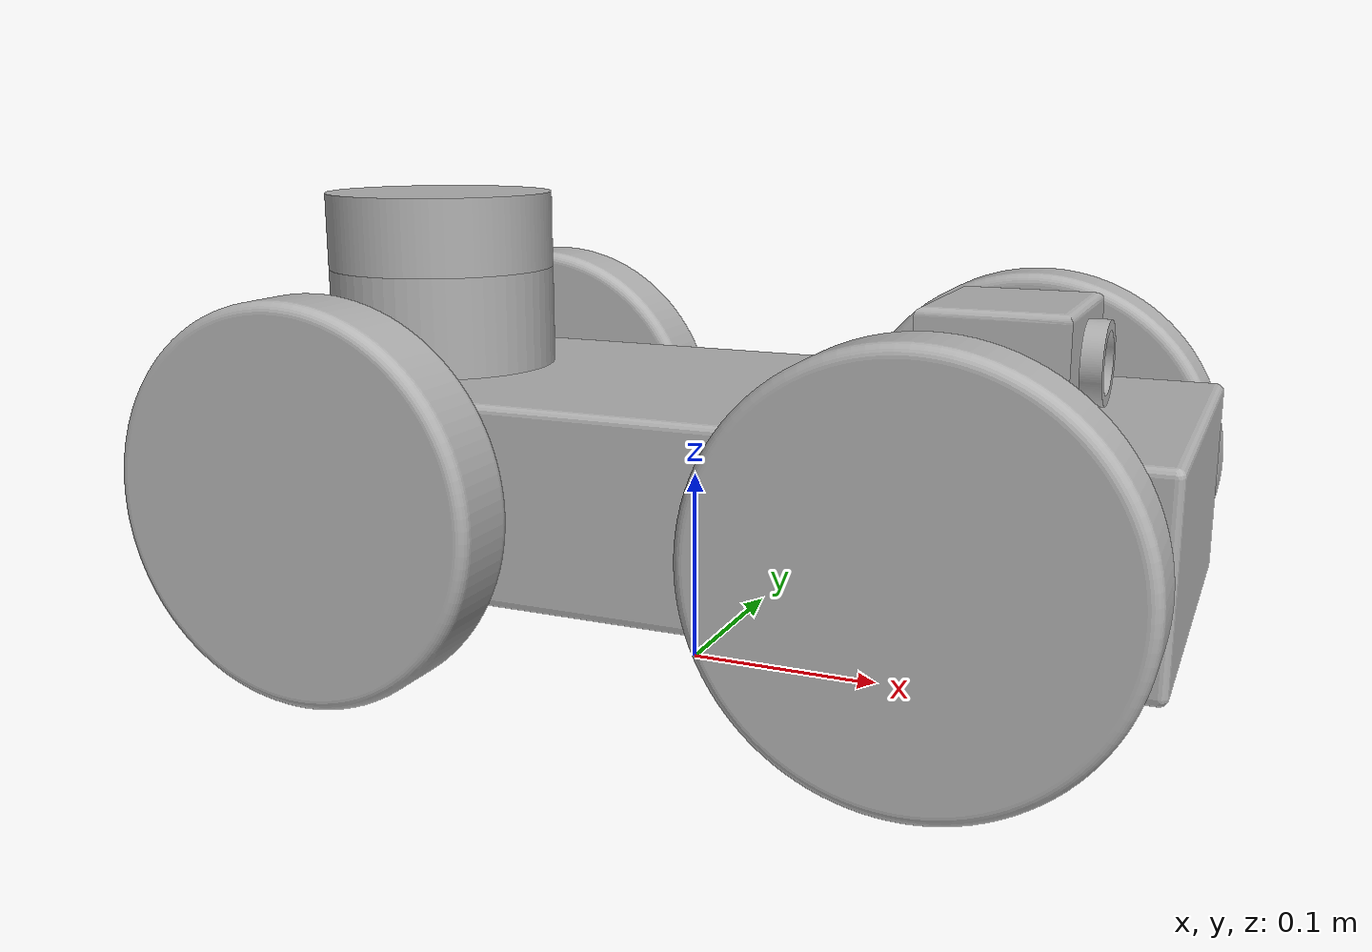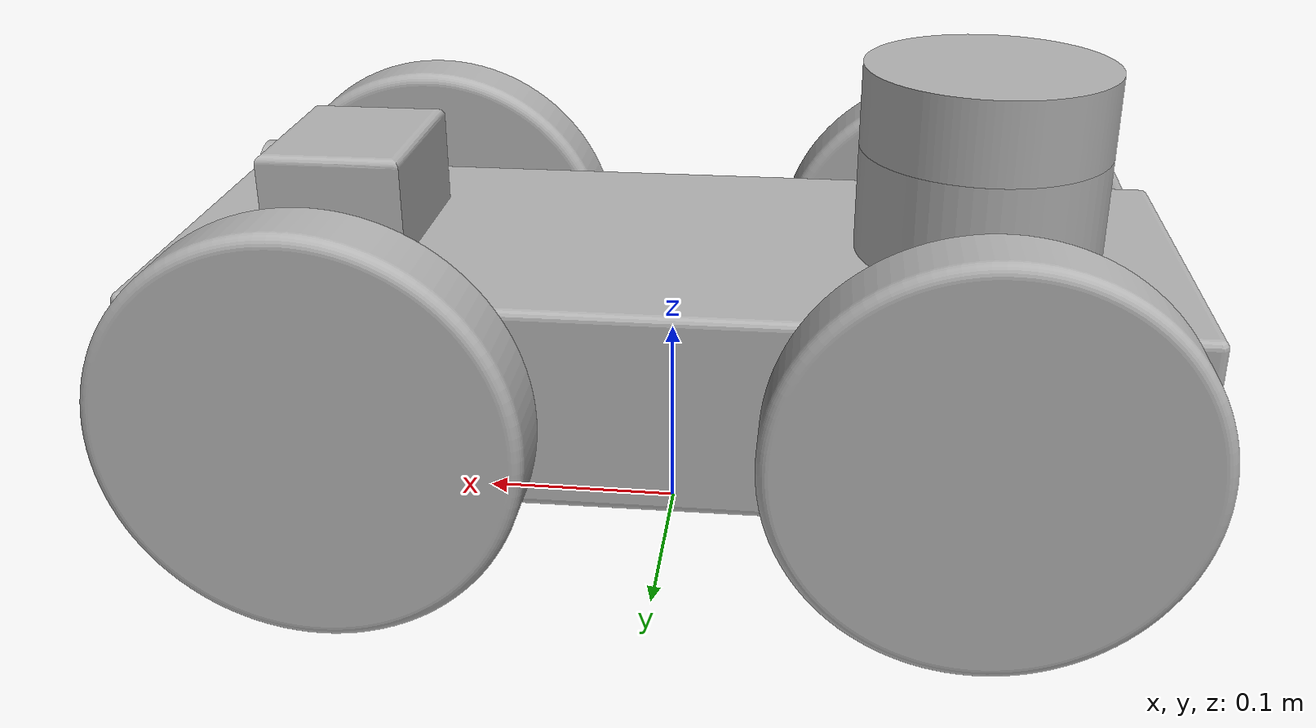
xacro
<?xml version="1.0" ?>
<robot name="pi_robot" xmlns:xacro="http://www.ros.org/wiki/xacro">

<xacro:include filename="$(find pi_robot_description)/urdf/materials.xacro" />
<xacro:include filename="$(find pi_robot_description)/urdf/pi_robot.trans" />
<xacro:include filename="$(find pi_robot_description)/urdf/pi_robot.gazebo" />
<link name="base_link">
  <inertial>
    <origin xyz="-0.003484816038942767 2.669844108166878e-17 0.10625767751059337" rpy="0 0 0"/>
    <mass value="29.432558250427014"/>
    <inertia ixx="0.127783" iyy="0.656623" izz="0.712915" ixy="-0.0" iyz="0.0" ixz="0.0073"/>
  </inertial>
  <visual>
    <origin xyz="0 0 0" rpy="0 0 0"/>
    <geometry>
      <mesh filename="package://pi_robot_description/meshes/base_link.stl" scale="0.001 0.001 0.001"/>
    </geometry>
    <material name="silver"/>
  </visual>
  <collision>
    <origin xyz="0 0 0" rpy="0 0 0"/>
    <geometry>
      <mesh filename="package://pi_robot_description/meshes/base_link.stl" scale="0.001 0.001 0.001"/>
    </geometry>
  </collision>
</link>

<link name="front_left_wheel_1">
  <inertial>
    <origin xyz="2.7755575615628914e-17 0.020000000000000004 0.0" rpy="0 0 0"/>
    <mass value="1.1597646981621281"/>
    <inertia ixx="0.003031" iyy="0.005757" izz="0.003031" ixy="0.0" iyz="0.0" ixz="0.0"/>
  </inertial>
  <visual>
    <origin xyz="-0.15 -0.105 -0.1" rpy="0 0 0"/>
    <geometry>
      <mesh filename="package://pi_robot_description/meshes/front_left_wheel_1.stl" scale="0.001 0.001 0.001"/>
    </geometry>
    <material name="silver"/>
  </visual>
  <collision>
    <origin xyz="-0.15 -0.105 -0.1" rpy="0 0 0"/>
    <geometry>
      <mesh filename="package://pi_robot_description/meshes/front_left_wheel_1.stl" scale="0.001 0.001 0.001"/>
    </geometry>
  </collision>
</link>

<link name="front_right_wheel_1">
  <inertial>
    <origin xyz="0.0 -0.020000000000000004 1.3877787807814457e-17" rpy="0 0 0"/>
    <mass value="1.1597646981621288"/>
    <inertia ixx="0.003031" iyy="0.005757" izz="0.003031" ixy="0.0" iyz="0.0" ixz="0.0"/>
  </inertial>
  <visual>
    <origin xyz="-0.15 0.105 -0.1" rpy="0 0 0"/>
    <geometry>
      <mesh filename="package://pi_robot_description/meshes/front_right_wheel_1.stl" scale="0.001 0.001 0.001"/>
    </geometry>
    <material name="silver"/>
  </visual>
  <collision>
    <origin xyz="-0.15 0.105 -0.1" rpy="0 0 0"/>
    <geometry>
      <mesh filename="package://pi_robot_description/meshes/front_right_wheel_1.stl" scale="0.001 0.001 0.001"/>
    </geometry>
  </collision>
</link>

<link name="rear_left_wheel_1">
  <inertial>
    <origin xyz="2.7755575615628914e-17 0.020000000000000004 1.3877787807814457e-17" rpy="0 0 0"/>
    <mass value="1.1597646981621286"/>
    <inertia ixx="0.003031" iyy="0.005757" izz="0.003031" ixy="0.0" iyz="0.0" ixz="0.0"/>
  </inertial>
  <visual>
    <origin xyz="0.15 -0.105 -0.1" rpy="0 0 0"/>
    <geometry>
      <mesh filename="package://pi_robot_description/meshes/rear_left_wheel_1.stl" scale="0.001 0.001 0.001"/>
    </geometry>
    <material name="silver"/>
  </visual>
  <collision>
    <origin xyz="0.15 -0.105 -0.1" rpy="0 0 0"/>
    <geometry>
      <mesh filename="package://pi_robot_description/meshes/rear_left_wheel_1.stl" scale="0.001 0.001 0.001"/>
    </geometry>
  </collision>
</link>

<link name="rear_right_wheel_1">
  <inertial>
    <origin xyz="2.7755575615628914e-17 -0.020000000000000004 0.0" rpy="0 0 0"/>
    <mass value="1.1597646981621286"/>
    <inertia ixx="0.003031" iyy="0.005757" izz="0.003031" ixy="-0.0" iyz="-0.0" ixz="0.0"/>
  </inertial>
  <visual>
    <origin xyz="0.15 0.105 -0.1" rpy="0 0 0"/>
    <geometry>
      <mesh filename="package://pi_robot_description/meshes/rear_right_wheel_1.stl" scale="0.001 0.001 0.001"/>
    </geometry>
    <material name="silver"/>
  </visual>
  <collision>
    <origin xyz="0.15 0.105 -0.1" rpy="0 0 0"/>
    <geometry>
      <mesh filename="package://pi_robot_description/meshes/rear_right_wheel_1.stl" scale="0.001 0.001 0.001"/>
    </geometry>
  </collision>
</link>

<link name="camera_link_1">
  <inertial>
    <origin xyz="0.0050000000000000044 3.2310396764073848e-18 2.7755575615628914e-17" rpy="0 0 0"/>
    <mass value="0.00783434667988954"/>
    <inertia ixx="2e-06" iyy="1e-06" izz="1e-06" ixy="0.0" iyz="0.0" ixz="0.0"/>
  </inertial>
  <visual>
    <origin xyz="-0.195 -0.0 -0.173" rpy="0 0 0"/>
    <geometry>
      <mesh filename="package://pi_robot_description/meshes/camera_link_1.stl" scale="0.001 0.001 0.001"/>
    </geometry>
    <material name="silver"/>
  </visual>
  <collision>
    <origin xyz="-0.195 -0.0 -0.173" rpy="0 0 0"/>
    <geometry>
      <mesh filename="package://pi_robot_description/meshes/camera_link_1.stl" scale="0.001 0.001 0.001"/>
    </geometry>
  </collision>
</link>

<link name="lidar_1">
  <inertial>
    <origin xyz="-2.7755575615628914e-17 -1.0052123437711855e-17 0.020000000000000018" rpy="0 0 0"/>
    <mass value="3.551256335617902"/>
    <inertia ixx="0.00367" iyy="0.00367" izz="0.006392" ixy="-0.0" iyz="0.0" ixz="-0.0"/>
  </inertial>
  <visual>
    <origin xyz="0.15 -0.0 -0.202" rpy="0 0 0"/>
    <geometry>
      <mesh filename="package://pi_robot_description/meshes/lidar_1.stl" scale="0.001 0.001 0.001"/>
    </geometry>
    <material name="silver"/>
  </visual>
  <collision>
    <origin xyz="0.15 -0.0 -0.202" rpy="0 0 0"/>
    <geometry>
      <mesh filename="package://pi_robot_description/meshes/lidar_1.stl" scale="0.001 0.001 0.001"/>
    </geometry>
  </collision>
</link>

<joint name="Revolute 5" type="continuous">
  <origin xyz="0.15 0.105 0.1" rpy="0 0 0"/>
  <parent link="base_link"/>
  <child link="front_left_wheel_1"/>
  <axis xyz="0.0 1.0 0.0"/>
</joint>

<joint name="Revolute 6" type="continuous">
  <origin xyz="0.15 -0.105 0.1" rpy="0 0 0"/>
  <parent link="base_link"/>
  <child link="front_right_wheel_1"/>
  <axis xyz="0.0 1.0 0.0"/>
</joint>

<joint name="Revolute 7" type="continuous">
  <origin xyz="-0.15 0.105 0.1" rpy="0 0 0"/>
  <parent link="base_link"/>
  <child link="rear_left_wheel_1"/>
  <axis xyz="0.0 1.0 0.0"/>
</joint>

<joint name="Revolute 8" type="continuous">
  <origin xyz="-0.15 -0.105 0.1" rpy="0 0 0"/>
  <parent link="base_link"/>
  <child link="rear_right_wheel_1"/>
  <axis xyz="0.0 1.0 0.0"/>
</joint>

<joint name="Rigid 9" type="fixed">
  <origin xyz="0.195 0.0 0.173" rpy="0 0 0"/>
  <parent link="base_link"/>
  <child link="camera_link_1"/>
</joint>

<joint name="Rigid 10" type="fixed">
  <origin xyz="-0.15 0.0 0.202" rpy="0 0 0"/>
  <parent link="base_link"/>
  <child link="lidar_1"/>
</joint>

</robot>

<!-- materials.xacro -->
<robot name="pi_robot" xmlns:xacro="http://www.ros.org/wiki/xacro" >

<material name="silver">
  <color rgba="0.700 0.700 0.700 1.000"/>
</material>

</robot>

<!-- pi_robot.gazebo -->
<robot name="pi_robot" xmlns:xacro="http://www.ros.org/wiki/xacro" >

<xacro:property name="body_color" value="Gazebo/Silver" />

<gazebo>
  <plugin name="control" filename="libgazebo_ros_control.so"/>
</gazebo>
<gazebo reference="base_link">
  <material>${body_color}</material>
  <mu1>0.1</mu1>
  <mu2>0.1</mu2>
  <selfCollide>true</selfCollide>
  <gravity>true</gravity>
</gazebo>

<gazebo reference="front_left_wheel_1">
  <material>${body_color}</material>
  <mu1>0.1</mu1>
  <mu2>0.1</mu2>
  <selfCollide>true</selfCollide>
</gazebo>

<gazebo reference="front_right_wheel_1">
  <material>${body_color}</material>
  <mu1>1500</mu1>
  <mu2>1500</mu2>
  <selfCollide>true</selfCollide>
</gazebo>

<gazebo reference="rear_left_wheel_1">
  <material>${body_color}</material>
  <mu1>1500</mu1>
  <mu2>1500</mu2>
  <selfCollide>true</selfCollide>
</gazebo>

<gazebo reference="rear_right_wheel_1">
  <material>${body_color}</material>
  <mu1>1500</mu1>
  <mu2>1500</mu2>
  <selfCollide>true</selfCollide>
</gazebo>

<gazebo reference="camera_link_1">
  <material>${body_color}</material>
  <mu1>1500</mu1>
  <mu2>1500</mu2>
  <selfCollide>true</selfCollide>
</gazebo>

<gazebo reference="lidar_1">
  <material>${body_color}</material>
  <mu1>0.2</mu1>
  <mu2>0.2</mu2>
  <selfCollide>true</selfCollide>
</gazebo>
   <gazebo>
  <plugin name="differential_drive_controller" filename="libgazebo_ros_diff_drive.so">

    <!-- Plugin update rate in Hz -->
    <updateRate>100</updateRate>

    <!-- Name of left joint, defaults to `left_joint` -->

    <leftJoint>Revolute 7</leftJoint>

    <!-- Name of right joint, defaults to `right_joint` -->

    <rightJoint>Revolute 8</rightJoint>

    <!-- The distance from the center of one wheel to the other, in meters, defaults to 0.34 m -->
    <wheelSeparation>0.210</wheelSeparation>

    <!-- Diameter of the wheels, in meters, defaults to 0.15 m -->
    <wheelDiameter>0.200</wheelDiameter>

    <!-- Wheel acceleration, in rad/s^2, defaults to 0.0 rad/s^2 -->
    <wheelAcceleration>2.0</wheelAcceleration>

    <!-- Maximum torque which the wheels can produce, in Nm, defaults to 5 Nm -->
    <wheelTorque>50</wheelTorque>

    <!-- Topic to receive geometry_msgs/Twist message commands, defaults to `cmd_vel` -->
    <commandTopic>cmd_vel</commandTopic>

    <!-- Topic to publish nav_msgs/Odometry messages, defaults to `odom` -->
    <odometryTopic>odom</odometryTopic>

    <!-- Odometry frame, defaults to `odom` -->
    <odometryFrame>odom</odometryFrame>

    <!-- Robot frame to calculate odometry from, defaults to `base_footprint` -->
    <robotBaseFrame>base_link</robotBaseFrame>

    <!-- Odometry source, 0 for ENCODER, 1 for WORLD, defaults to WORLD -->
    <odometrySource>1</odometrySource>

    <!-- Set to true to publish transforms for the wheel links, defaults to false -->
    <publishWheelTF>false</publishWheelTF>

    <!-- Set to true to publish transforms for the odometry, defaults to true -->
    <publishOdom>true</publishOdom>

    <!-- Set to true to publish sensor_msgs/JointState on /joint_states for the wheel joints, defaults to false -->
    <publishWheelJointState>false</publishWheelJointState>

    <!-- Set to true to swap right and left wheels, defaults to true -->
    <legacyMode>false</legacyMode>
  </plugin>
</gazebo>
    <!-- camera -->
  <gazebo reference="camera_link_1">
    <sensor type="camera" name="camera1">
      <update_rate>30.0</update_rate>
      <camera name="head">
        <horizontal_fov>1.3962634</horizontal_fov>
        <image>
          <width>800</width>
          <height>800</height>
          <format>R8G8B8</format>
        </image>
        <clip>
          <near>0.02</near>
          <far>300</far>
        </clip>
        <noise>
          <type>gaussian</type>
          <!-- Noise is sampled independently per pixel on each frame.
               That pixel's noise value is added to each of its color
               channels, which at that point lie in the range [0,1]. -->
          <mean>0.0</mean>
          <stddev>0.007</stddev>
        </noise>
      </camera>
      <plugin name="camera_controller" filename="libgazebo_ros_camera.so">
        <alwaysOn>true</alwaysOn>
        <updateRate>0.0</updateRate>
        <cameraName>pi_robot_description/camera1</cameraName>
        <imageTopicName>image_raw</imageTopicName>
        <cameraInfoTopicName>camera_info</cameraInfoTopicName>
        <frameName>camera_link_1</frameName>
        <hackBaseline>0.07</hackBaseline>
        <distortionK1>0.0</distortionK1>
        <distortionK2>0.0</distortionK2>
        <distortionK3>0.0</distortionK3>
        <distortionT1>0.0</distortionT1>
        <distortionT2>0.0</distortionT2>
      </plugin>
    </sensor>
  </gazebo>
    <!-- hokuyo -->
  <gazebo reference="lidar_1">
    <sensor type="ray" name="head_hokuyo_sensor">
      <pose>0 0 0 0 0 0</pose>
      <visualize>true</visualize>
      <update_rate>40</update_rate>
      <ray>
        <scan>
          <horizontal>
            <samples>720</samples>
            <resolution>1</resolution>
            <min_angle>-1.570796</min_angle>
            <max_angle>1.570796</max_angle>
          </horizontal>
        </scan>
        <range>
          <min>0.10</min>
          <max>30.0</max>
          <resolution>0.01</resolution>
        </range>
        <noise>
          <type>gaussian</type>
          <mean>0.0</mean>
          <stddev>0.01</stddev>
        </noise>
      </ray>
       <plugin name="gazebo_ros_head_hokuyo_controller" filename="libgazebo_ros_laser.so">
        <topicName>/scan</topicName>
        <frameName>lidar_1</frameName>
      </plugin>
    </sensor>
  </gazebo>

</robot>
